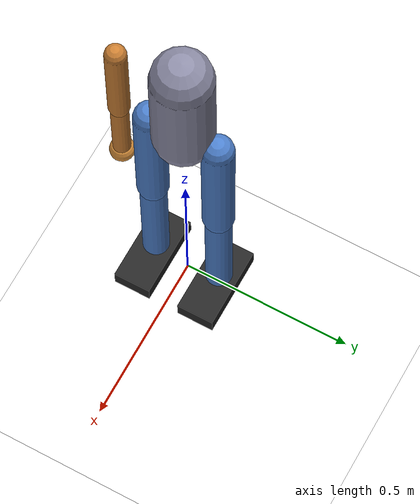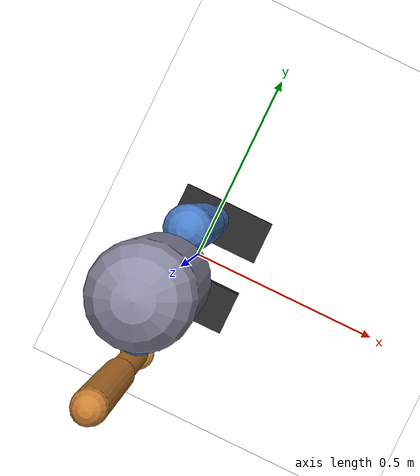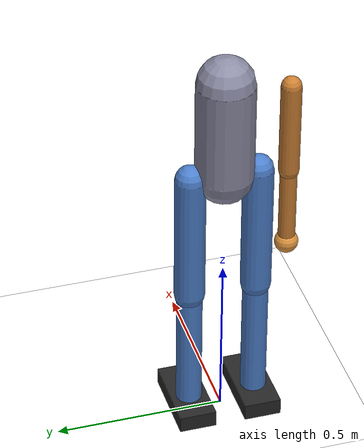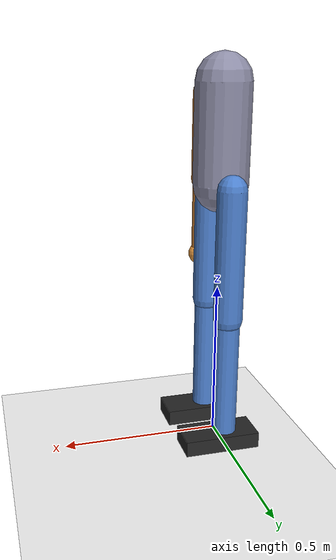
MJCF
<mujoco model="r1_like">
  <compiler angle="radian" autolimits="true"/>
  <option timestep="0.0005" gravity="0 0 -9.81" iterations="50" tolerance="1e-10"/>

  <default>
    <joint damping="1.5" armature="0.01" frictionloss="0.1"/>
    <geom contype="1" conaffinity="1" friction="0.9 0.005 0.0001" condim="3"/>
    <motor ctrllimited="true"/>
  </default>

  <asset>
    <texture name="checker" type="2d" builtin="checker" width="512" height="512"
             rgb1="0.15 0.2 0.25" rgb2="0.25 0.3 0.35"/>
    <material name="floor_mat" texture="checker" texrepeat="6 6" texuniform="true" reflectance="0.2"/>
    <material name="torso_mat" rgba="0.55 0.55 0.65 1"/>
    <material name="leg_mat"   rgba="0.30 0.50 0.80 1"/>
    <material name="arm_mat"   rgba="0.80 0.50 0.20 1"/>
    <material name="foot_mat"  rgba="0.15 0.15 0.15 1"/>
    <material name="hand_mat"  rgba="0.90 0.60 0.25 1"/>
  </asset>

  <worldbody>
    <light pos="0 0 4" dir="0 0 -1" diffuse="0.9 0.9 0.9" specular="0.2 0.2 0.2"/>
    <light pos="2 -2 3" dir="-1 1 -1" diffuse="0.4 0.4 0.4"/>
    <geom name="floor" type="plane" size="8 8 0.1" material="floor_mat" rgba="1 1 1 1"/>

    <!-- ===== TORSO (floating base) — 15 kg, 0.96 m initial height ===== -->
    <body name="torso" pos="0 0 0.96">
      <freejoint name="root"/>
      <geom name="torso_geom" type="capsule" fromto="0 0 -0.13 0 0 0.17"
            size="0.085" material="torso_mat" mass="15"/>
      <site name="torso_imu" pos="0 0 0" size="0.01"/>
      <site name="com_site"  pos="0 0 0" size="0.01"/>

      <!-- ===== LEFT LEG  (6 kg total: 3.5 + 2.0 + 0.5) ===== -->
      <body name="left_thigh" pos="0 0.10 -0.13">
        <joint name="left_hip_x" type="hinge" axis="1 0 0"
               range="-0.6 0.6" damping="3.0"/>
        <joint name="left_hip_y" type="hinge" axis="0 1 0"
               range="-1.2 0.7" damping="3.0"/>
        <geom name="left_thigh_geom" type="capsule" fromto="0 0 0 0 0 -0.40"
              size="0.045" material="leg_mat" mass="3.5"/>
        <body name="left_shank" pos="0 0 -0.40">
          <joint name="left_knee_y" type="hinge" axis="0 1 0"
                 range="0.0 2.2" damping="3.0"/>
          <geom name="left_shank_geom" type="capsule" fromto="0 0 0 0 0 -0.38"
                size="0.038" material="leg_mat" mass="2.0"/>
          <body name="left_foot" pos="0 0 -0.38">
            <joint name="left_ankle_y" type="hinge" axis="0 1 0"
                   range="-0.7 0.7" damping="1.5"/>
            <geom name="left_foot_geom" type="box"
                  size="0.12 0.055 0.025" pos="0.02 0 -0.025"
                  material="foot_mat" mass="0.5"/>
            <site name="left_foot_contact" pos="0.02 0 -0.05"/>
          </body>
        </body>
      </body>

      <!-- ===== RIGHT LEG  (6 kg total: 3.5 + 2.0 + 0.5) ===== -->
      <body name="right_thigh" pos="0 -0.10 -0.13">
        <joint name="right_hip_x" type="hinge" axis="1 0 0"
               range="-0.6 0.6" damping="3.0"/>
        <joint name="right_hip_y" type="hinge" axis="0 1 0"
               range="-1.2 0.7" damping="3.0"/>
        <geom name="right_thigh_geom" type="capsule" fromto="0 0 0 0 0 -0.40"
              size="0.045" material="leg_mat" mass="3.5"/>
        <body name="right_shank" pos="0 0 -0.40">
          <joint name="right_knee_y" type="hinge" axis="0 1 0"
                 range="0.0 2.2" damping="3.0"/>
          <geom name="right_shank_geom" type="capsule" fromto="0 0 0 0 0 -0.38"
                size="0.038" material="leg_mat" mass="2.0"/>
          <body name="right_foot" pos="0 0 -0.38">
            <joint name="right_ankle_y" type="hinge" axis="0 1 0"
                   range="-0.7 0.7" damping="1.5"/>
            <geom name="right_foot_geom" type="box"
                  size="0.12 0.055 0.025" pos="0.02 0 -0.025"
                  material="foot_mat" mass="0.5"/>
            <site name="right_foot_contact" pos="0.02 0 -0.05"/>
          </body>
        </body>
      </body>

      <!-- ===== RIGHT ARM  (2 kg total: 1.0 + 0.7 + 0.3) ===== -->
      <body name="right_upper_arm" pos="0 -0.19 0.13">
        <joint name="right_shoulder_x" type="hinge" axis="1 0 0"
               range="-1.6 1.6" damping="1.5"/>
        <joint name="right_shoulder_y" type="hinge" axis="0 1 0"
               range="-2.0 2.0" damping="1.5"/>
        <geom name="right_upper_arm_geom" type="capsule" fromto="0 0 0 0 0 -0.28"
              size="0.030" material="arm_mat" mass="1.0"/>
        <body name="right_forearm" pos="0 0 -0.28">
          <joint name="right_elbow_y" type="hinge" axis="0 1 0"
                 range="-2.4 0.0" damping="1.0"/>
          <geom name="right_forearm_geom" type="capsule" fromto="0 0 0 0 0 -0.25"
                size="0.025" material="arm_mat" mass="0.7"/>
          <body name="right_hand" pos="0 0 -0.25">
            <geom name="right_hand_geom" type="sphere" size="0.035"
                  material="hand_mat" mass="0.3"/>
            <site name="right_hand_site" pos="0 0 0" size="0.015"
                  rgba="1 0.3 0.3 1"/>
          </body>
        </body>
      </body>

    </body><!-- torso -->
  </worldbody>

  <!-- ===== ACTUATORS (gear=1 → ctrl in Nm) ===== -->
  <actuator>
    <motor name="left_hip_x"       joint="left_hip_x"       gear="1" ctrlrange="-120 120"/>
    <motor name="left_hip_y"       joint="left_hip_y"       gear="1" ctrlrange="-200 200"/>
    <motor name="left_knee_y"      joint="left_knee_y"      gear="1" ctrlrange="-200 200"/>
    <motor name="left_ankle_y"     joint="left_ankle_y"     gear="1" ctrlrange="-100 100"/>
    <motor name="right_hip_x"      joint="right_hip_x"      gear="1" ctrlrange="-120 120"/>
    <motor name="right_hip_y"      joint="right_hip_y"      gear="1" ctrlrange="-200 200"/>
    <motor name="right_knee_y"     joint="right_knee_y"     gear="1" ctrlrange="-200 200"/>
    <motor name="right_ankle_y"    joint="right_ankle_y"    gear="1" ctrlrange="-100 100"/>
    <motor name="right_shoulder_x" joint="right_shoulder_x" gear="1" ctrlrange="-80 80"/>
    <motor name="right_shoulder_y" joint="right_shoulder_y" gear="1" ctrlrange="-80 80"/>
    <motor name="right_elbow_y"    joint="right_elbow_y"    gear="1" ctrlrange="-60 60"/>
  </actuator>

  <!-- ===== SENSORS ===== -->
  <sensor>
    <framepos  name="hand_pos"       objtype="site" objname="right_hand_site"/>
    <framepos  name="left_foot_pos"  objtype="site" objname="left_foot_contact"/>
    <framepos  name="right_foot_pos" objtype="site" objname="right_foot_contact"/>
    <subtreecom name="robot_com"     body="torso"/>
    <framequat name="torso_quat"     objtype="body" objname="torso"/>
    <gyro      name="torso_gyro"     site="torso_imu"/>
  </sensor>

  <!-- ===== DEFAULT STANDING KEYFRAME (R1-like geometry) ===== -->
  <keyframe>
    <key name="stand"
         qpos="0 0 0.96  1 0 0 0
               0 -0.15  0.35 -0.12
               0 -0.15  0.35 -0.12
               0  0.5  -1.0"
         qvel="0 0 0 0 0 0
               0 0 0 0
               0 0 0 0
               0 0 0"/>
  </keyframe>

</mujoco>
